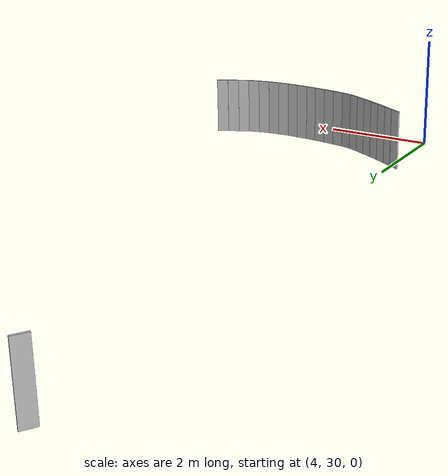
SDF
<sdf version="1.4">
 <world name="default">
  <model name="lattice_283">
   <static>1</static>
   <link name="link">
    <collision name="collision">
     <pose>0.02 0.105 0.525 0 -0 0</pose>
     <geometry><box><size>0.04 0.21 1.05</size></box></geometry>
    </collision>
    <visual name="visual"><geometry><mesh><uri>model://lattice/meshes/lattice.dae</uri></mesh></geometry></visual>
    <velocity_decay><linear>0</linear><angular>0</angular></velocity_decay>
   </link>
   <pose>3.85165 41.0309 0 0 -0 2.53926</pose>
  </model>
  <model name="lattice_385">
   <static>1</static>
   <link name="link">
    <collision name="collision">
     <pose>0.02 0.105 0.525 0 -0 0</pose>
     <geometry><box><size>0.04 0.21 1.05</size></box></geometry>
    </collision>
    <visual name="visual"><geometry><mesh><uri>model://lattice/meshes/lattice.dae</uri></mesh></geometry></visual>
    <velocity_decay><linear>0</linear><angular>0</angular></velocity_decay>
   </link>
   <pose>4.0212 31.5785 0 0 -0 1.02954</pose>
  </model>
  <model name="lattice_389">
   <static>1</static>
   <link name="link">
    <collision name="collision">
     <pose>0.02 0.105 0.525 0 -0 0</pose>
     <geometry><box><size>0.04 0.21 1.05</size></box></geometry>
    </collision>
    <visual name="visual"><geometry><mesh><uri>model://lattice/meshes/lattice.dae</uri></mesh></geometry></visual>
    <velocity_decay><linear>0</linear><angular>0</angular></velocity_decay>
   </link>
   <pose>4.19395 31.4732 0 0 -0 0.999186</pose>
  </model>
  <model name="lattice_390">
   <static>1</static>
   <link name="link">
    <collision name="collision">
     <pose>0.02 0.105 0.525 0 -0 0</pose>
     <geometry><box><size>0.04 0.21 1.05</size></box></geometry>
    </collision>
    <visual name="visual"><geometry><mesh><uri>model://lattice/meshes/lattice.dae</uri></mesh></geometry></visual>
    <velocity_decay><linear>0</linear><angular>0</angular></velocity_decay>
   </link>
   <pose>4.93217 31.0737 0 0 -0 1.08351</pose>
  </model>
  <model name="lattice_391">
   <static>1</static>
   <link name="link">
    <collision name="collision">
     <pose>0.02 0.105 0.525 0 -0 0</pose>
     <geometry><box><size>0.04 0.21 1.05</size></box></geometry>
    </collision>
    <visual name="visual"><geometry><mesh><uri>model://lattice/meshes/lattice.dae</uri></mesh></geometry></visual>
    <velocity_decay><linear>0</linear><angular>0</angular></velocity_decay>
   </link>
   <pose>5.12115 30.9863 0 0 -0 1.1519</pose>
  </model>
  <model name="lattice_392">
   <static>1</static>
   <link name="link">
    <collision name="collision">
     <pose>0.02 0.105 0.525 0 -0 0</pose>
     <geometry><box><size>0.04 0.21 1.05</size></box></geometry>
    </collision>
    <visual name="visual"><geometry><mesh><uri>model://lattice/meshes/lattice.dae</uri></mesh></geometry></visual>
    <velocity_decay><linear>0</linear><angular>0</angular></velocity_decay>
   </link>
   <pose>4.74739 31.1716 0 0 -0 1.10555</pose>
  </model>
  <model name="lattice_393">
   <static>1</static>
   <link name="link">
    <collision name="collision">
     <pose>0.02 0.105 0.525 0 -0 0</pose>
     <geometry><box><size>0.04 0.21 1.05</size></box></geometry>
    </collision>
    <visual name="visual"><geometry><mesh><uri>model://lattice/meshes/lattice.dae</uri></mesh></geometry></visual>
    <velocity_decay><linear>0</linear><angular>0</angular></velocity_decay>
   </link>
   <pose>4.56055 31.2659 0 0 -0 1.08022</pose>
  </model>
  <model name="lattice_394">
   <static>1</static>
   <link name="link">
    <collision name="collision">
     <pose>0.02 0.105 0.525 0 -0 0</pose>
     <geometry><box><size>0.04 0.21 1.05</size></box></geometry>
    </collision>
    <visual name="visual"><geometry><mesh><uri>model://lattice/meshes/lattice.dae</uri></mesh></geometry></visual>
    <velocity_decay><linear>0</linear><angular>0</angular></velocity_decay>
   </link>
   <pose>4.37493 31.3668 0 0 -0 1.03667</pose>
  </model>
  <model name="lattice_395">
   <static>1</static>
   <link name="link">
    <collision name="collision">
     <pose>0.02 0.105 0.525 0 -0 0</pose>
     <geometry><box><size>0.04 0.21 1.05</size></box></geometry>
    </collision>
    <visual name="visual"><geometry><mesh><uri>model://lattice/meshes/lattice.dae</uri></mesh></geometry></visual>
    <velocity_decay><linear>0</linear><angular>0</angular></velocity_decay>
   </link>
   <pose>5.32804 30.9297 0 0 -0 1.31059</pose>
  </model>
  <model name="lattice_396">
   <static>1</static>
   <link name="link">
    <collision name="collision">
     <pose>0.02 0.105 0.525 0 -0 0</pose>
     <geometry><box><size>0.04 0.21 1.05</size></box></geometry>
    </collision>
    <visual name="visual"><geometry><mesh><uri>model://lattice/meshes/lattice.dae</uri></mesh></geometry></visual>
    <velocity_decay><linear>0</linear><angular>0</angular></velocity_decay>
   </link>
   <pose>5.53133 30.8969 0 0 -0 1.40872</pose>
  </model>
  <model name="lattice_397">
   <static>1</static>
   <link name="link">
    <collision name="collision">
     <pose>0.02 0.105 0.525 0 -0 0</pose>
     <geometry><box><size>0.04 0.21 1.05</size></box></geometry>
    </collision>
    <visual name="visual"><geometry><mesh><uri>model://lattice/meshes/lattice.dae</uri></mesh></geometry></visual>
    <velocity_decay><linear>0</linear><angular>0</angular></velocity_decay>
   </link>
   <pose>5.95346 30.8441 0 0 -0 1.46694</pose>
  </model>
  <model name="lattice_398">
   <static>1</static>
   <link name="link">
    <collision name="collision">
     <pose>0.02 0.105 0.525 0 -0 0</pose>
     <geometry><box><size>0.04 0.21 1.05</size></box></geometry>
    </collision>
    <visual name="visual"><geometry><mesh><uri>model://lattice/meshes/lattice.dae</uri></mesh></geometry></visual>
    <velocity_decay><linear>0</linear><angular>0</angular></velocity_decay>
   </link>
   <pose>5.74253 30.8658 0 0 -0 1.4354</pose>
  </model>
  <model name="lattice_399">
   <static>1</static>
   <link name="link">
    <collision name="collision">
     <pose>0.02 0.105 0.525 0 -0 0</pose>
     <geometry><box><size>0.04 0.21 1.05</size></box></geometry>
    </collision>
    <visual name="visual"><geometry><mesh><uri>model://lattice/meshes/lattice.dae</uri></mesh></geometry></visual>
    <velocity_decay><linear>0</linear><angular>0</angular></velocity_decay>
   </link>
   <pose>6.15477 30.8253 0 0 -0 1.48225</pose>
  </model>
  <model name="lattice_400">
   <static>1</static>
   <link name="link">
    <collision name="collision">
     <pose>0.02 0.105 0.525 0 -0 0</pose>
     <geometry><box><size>0.04 0.21 1.05</size></box></geometry>
    </collision>
    <visual name="visual"><geometry><mesh><uri>model://lattice/meshes/lattice.dae</uri></mesh></geometry></visual>
    <velocity_decay><linear>0</linear><angular>0</angular></velocity_decay>
   </link>
   <pose>6.36883 30.8192 0 0 -0 1.54029</pose>
  </model>
  <model name="lattice_401">
   <static>1</static>
   <link name="link">
    <collision name="collision">
     <pose>0.02 0.105 0.525 0 -0 0</pose>
     <geometry><box><size>0.04 0.21 1.05</size></box></geometry>
    </collision>
    <visual name="visual"><geometry><mesh><uri>model://lattice/meshes/lattice.dae</uri></mesh></geometry></visual>
    <velocity_decay><linear>0</linear><angular>0</angular></velocity_decay>
   </link>
   <pose>6.79544 30.8253 0 0 -0 1.64695</pose>
  </model>
  <model name="lattice_402">
   <static>1</static>
   <link name="link">
    <collision name="collision">
     <pose>0.02 0.105 0.525 0 -0 0</pose>
     <geometry><box><size>0.04 0.21 1.05</size></box></geometry>
    </collision>
    <visual name="visual"><geometry><mesh><uri>model://lattice/meshes/lattice.dae</uri></mesh></geometry></visual>
    <velocity_decay><linear>0</linear><angular>0</angular></velocity_decay>
   </link>
   <pose>6.57879 30.809 0 0 -0 1.52718</pose>
  </model>
  <model name="lattice_403">
   <static>1</static>
   <link name="link">
    <collision name="collision">
     <pose>0.02 0.105 0.525 0 -0 0</pose>
     <geometry><box><size>0.04 0.21 1.05</size></box></geometry>
    </collision>
    <visual name="visual"><geometry><mesh><uri>model://lattice/meshes/lattice.dae</uri></mesh></geometry></visual>
    <velocity_decay><linear>0</linear><angular>0</angular></velocity_decay>
   </link>
   <pose>7.00668 30.8424 0 0 -0 1.65</pose>
  </model>
  <model name="lattice_404">
   <static>1</static>
   <link name="link">
    <collision name="collision">
     <pose>0.02 0.105 0.525 0 -0 0</pose>
     <geometry><box><size>0.04 0.21 1.05</size></box></geometry>
    </collision>
    <visual name="visual"><geometry><mesh><uri>model://lattice/meshes/lattice.dae</uri></mesh></geometry></visual>
    <velocity_decay><linear>0</linear><angular>0</angular></velocity_decay>
   </link>
   <pose>7.21802 30.8827 0 0 -0 1.75791</pose>
  </model>
  <model name="lattice_405">
   <static>1</static>
   <link name="link">
    <collision name="collision">
     <pose>0.02 0.105 0.525 0 -0 0</pose>
     <geometry><box><size>0.04 0.21 1.05</size></box></geometry>
    </collision>
    <visual name="visual"><geometry><mesh><uri>model://lattice/meshes/lattice.dae</uri></mesh></geometry></visual>
    <velocity_decay><linear>0</linear><angular>0</angular></velocity_decay>
   </link>
   <pose>7.9965 31.2237 0 0 -0 2.06114</pose>
  </model>
  <model name="lattice_406">
   <static>1</static>
   <link name="link">
    <collision name="collision">
     <pose>0.02 0.105 0.525 0 -0 0</pose>
     <geometry><box><size>0.04 0.21 1.05</size></box></geometry>
    </collision>
    <visual name="visual"><geometry><mesh><uri>model://lattice/meshes/lattice.dae</uri></mesh></geometry></visual>
    <velocity_decay><linear>0</linear><angular>0</angular></velocity_decay>
   </link>
   <pose>7.80708 31.121 0 0 -0 2.01023</pose>
  </model>
  <model name="lattice_407">
   <static>1</static>
   <link name="link">
    <collision name="collision">
     <pose>0.02 0.105 0.525 0 -0 0</pose>
     <geometry><box><size>0.04 0.21 1.05</size></box></geometry>
    </collision>
    <visual name="visual"><geometry><mesh><uri>model://lattice/meshes/lattice.dae</uri></mesh></geometry></visual>
    <velocity_decay><linear>0</linear><angular>0</angular></velocity_decay>
   </link>
   <pose>7.6135 31.032 0 0 -0 2.03783</pose>
  </model>
  <model name="lattice_408">
   <static>1</static>
   <link name="link">
    <collision name="collision">
     <pose>0.02 0.105 0.525 0 -0 0</pose>
     <geometry><box><size>0.04 0.21 1.05</size></box></geometry>
    </collision>
    <visual name="visual"><geometry><mesh><uri>model://lattice/meshes/lattice.dae</uri></mesh></geometry></visual>
    <velocity_decay><linear>0</linear><angular>0</angular></velocity_decay>
   </link>
   <pose>7.42436 30.9381 0 0 -0 1.83835</pose>
  </model>
 </world>
</sdf>
